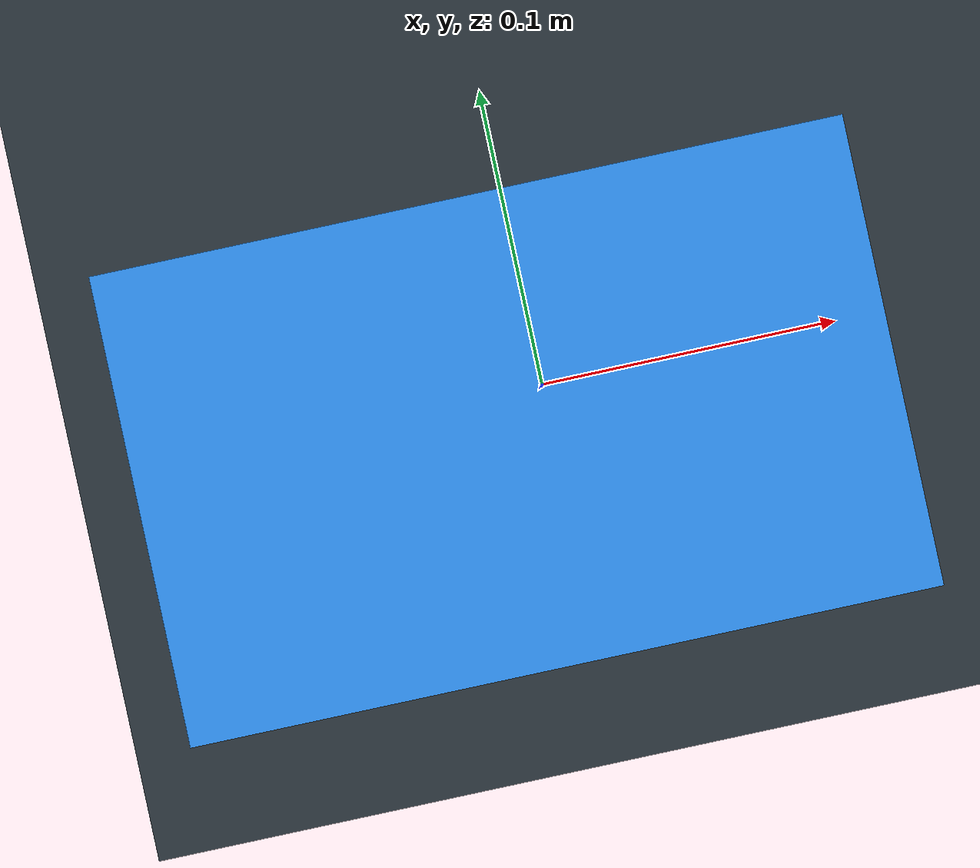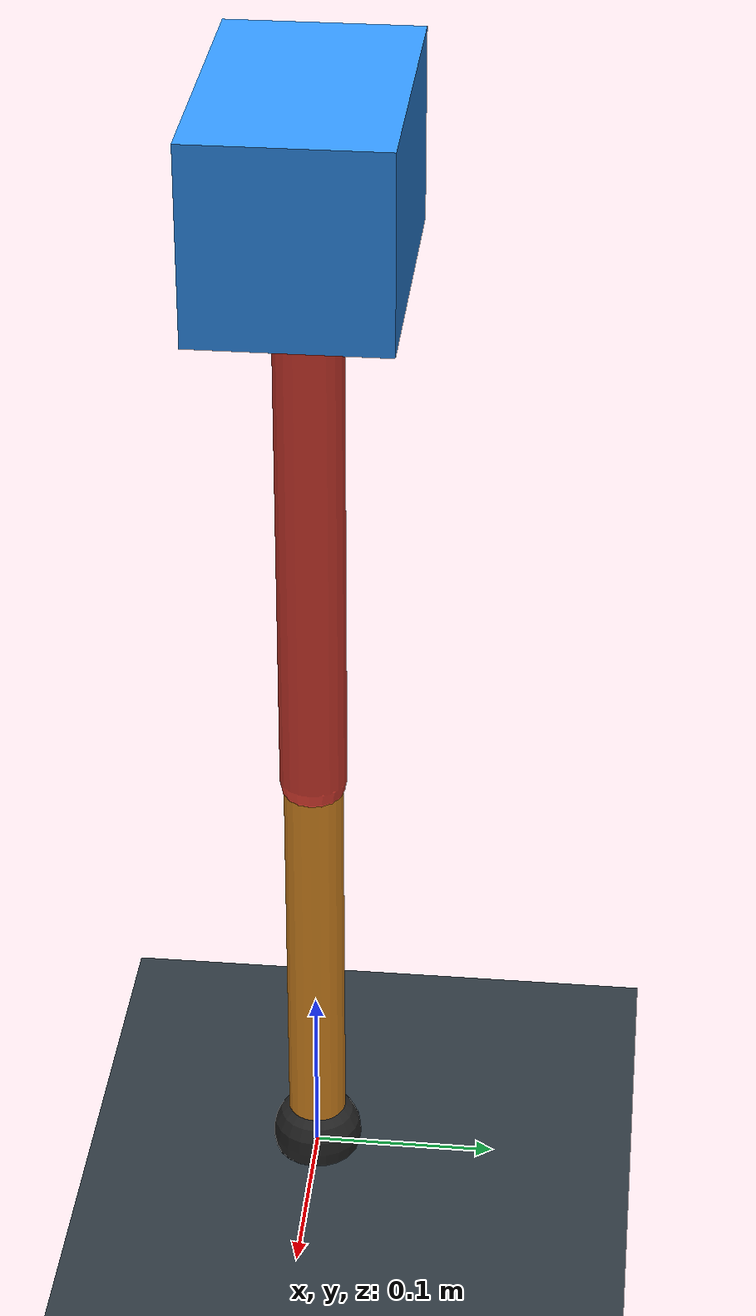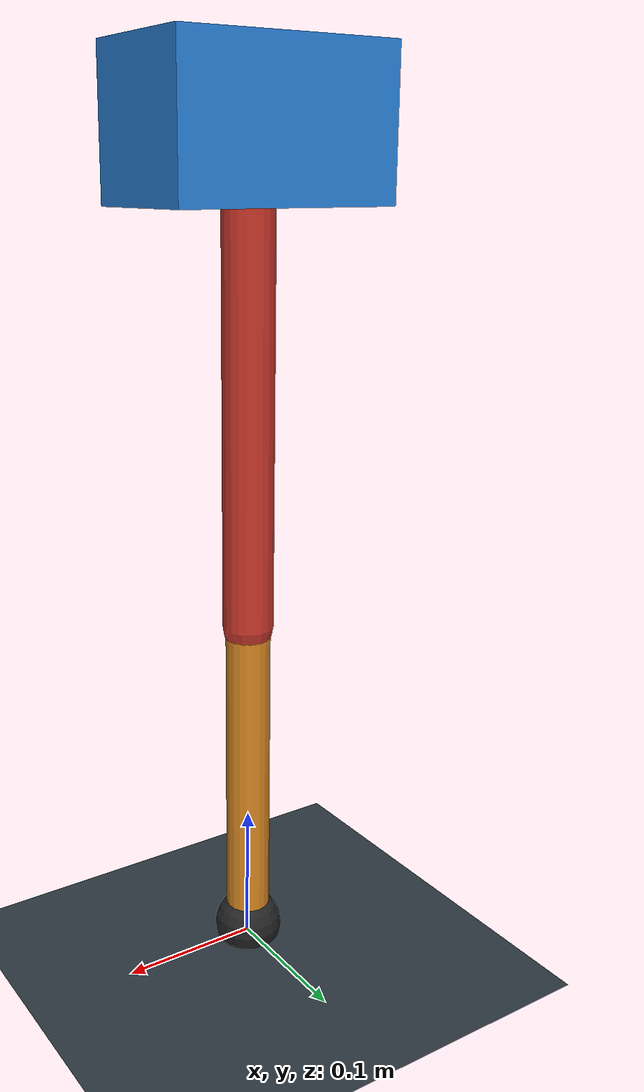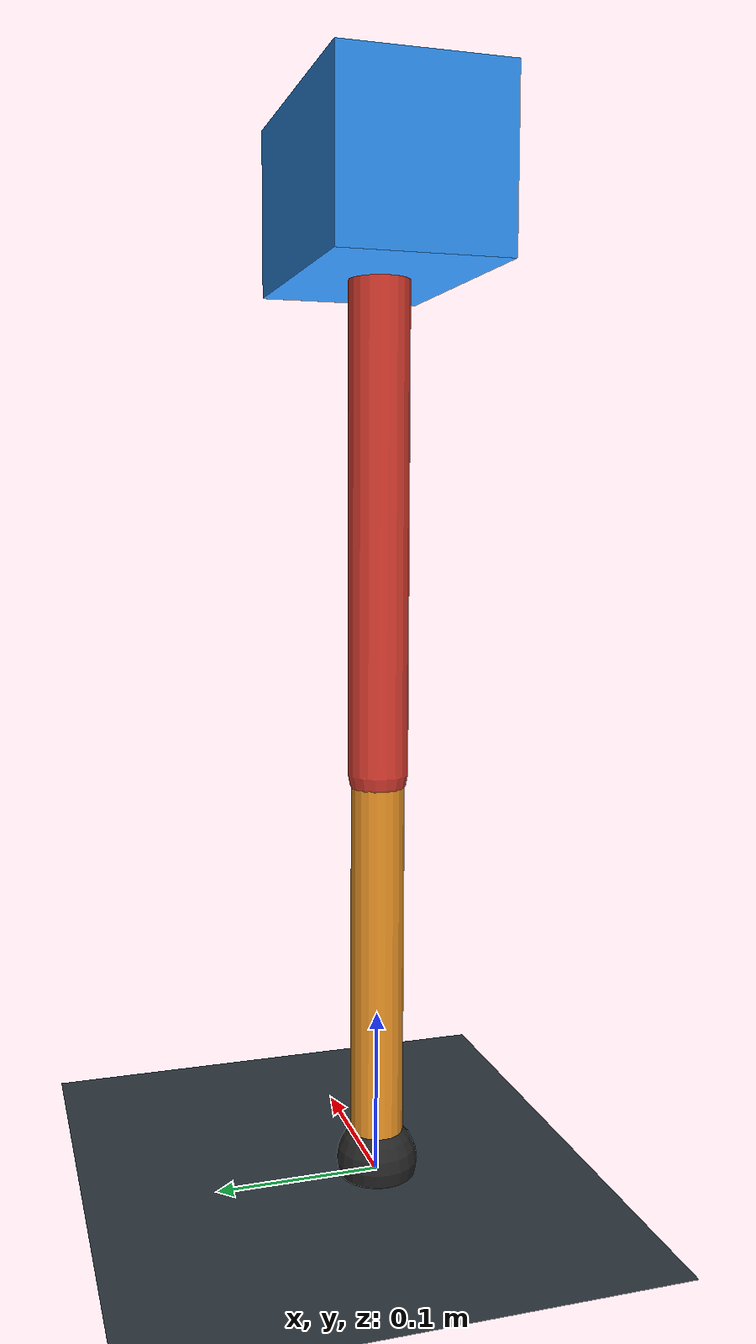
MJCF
<mujoco model="single_axis_two_bar">
  <compiler angle="radian" inertiafromgeom="true"/>
  <option timestep="0.001" integrator="implicitfast" gravity="0 0 -9.81"/>
  <default>
    <joint damping="0.08"/>
    <geom friction="1.2 0.01 0.0001" condim="3"/>
  </default>
  <worldbody>
    <geom name="floor" type="plane" size="5 5 0.1" rgba="0.18 0.22 0.25 1"/>
    <body name="carriage" pos="0 0 0.5872252166708989">
      <joint name="pole_slide" type="slide" axis="0 0 1"/>
      <geom name="payload" type="box" size="0.08 0.05 0.05" mass="2.55779125390053" rgba="0.2 0.6 1 1"/>
      <body name="thigh" pos="0 0 0">
        <joint name="hip" type="hinge" axis="0 1 0"/>
        <geom name="thigh_link" type="capsule" fromto="0 0 0 0 0 -0.33793651748256315" size="0.018" mass="0.24078423414342656" rgba="0.9 0.25 0.2 1"/>
        <body name="shank" pos="0 0 -0.33793651748256315">
          <joint name="knee" type="hinge" axis="0 1 0"/>
          <geom name="shank_link" type="capsule" fromto="0 0 0 0 0 -0.24167710795135328" size="0.016" mass="0.17219813289656516" rgba="0.95 0.6 0.15 1"/>
          <geom name="foot" type="sphere" pos="0 0 -0.24167710795135328" size="0.025" mass="0.03" rgba="0.15 0.15 0.15 1"/>
          <site name="toe" pos="0 0 -0.24167710795135328" size="0.008"/>
        </body>
      </body>
    </body>
  </worldbody>
  <actuator>
    <motor name="hip_motor" joint="hip" ctrlrange="-31.938050664787102 31.938050664787102"/>
    <motor name="knee_motor" joint="knee" ctrlrange="-109.38383621334336 109.38383621334336"/>
  </actuator>
</mujoco>
